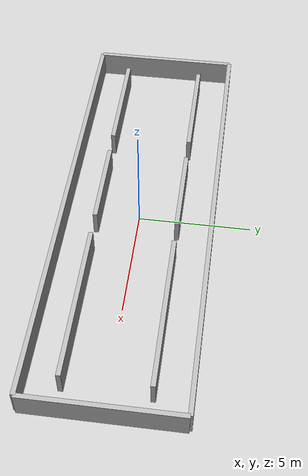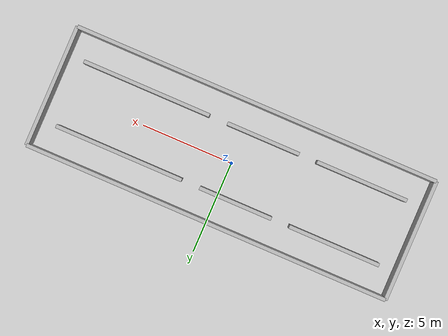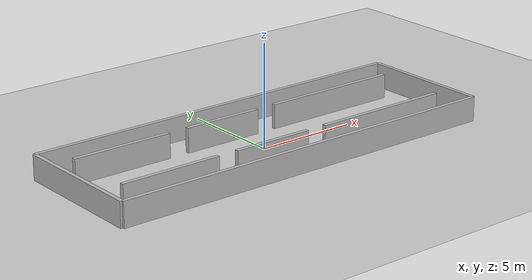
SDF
<?xml version="1.0" ?>
<sdf version="1.6">
  <world name="long_corridor">
    <physics type="ode">
      <max_step_size>0.001</max_step_size>
      <real_time_factor>1.0</real_time_factor>
      <real_time_update_rate>1000</real_time_update_rate>
    </physics>

    <include><uri>model://ground_plane</uri></include>
    <include><uri>model://sun</uri></include>

    <scene>
      <shadows>false</shadows>
    </scene>

    <!-- Outer boundary: 20m x 6.6m (короче и уже боковые коридоры) -->
    <model name="outer_north">
      <static>true</static>
      <pose>0 3.3 0.6 0 0 0</pose>
      <link name="link">
        <collision name="collision"><geometry><box><size>20 0.2 1.2</size></box></geometry></collision>
        <visual name="visual"><geometry><box><size>20 0.2 1.2</size></box></geometry></visual>
      </link>
    </model>

    <model name="outer_south">
      <static>true</static>
      <pose>0 -3.3 0.6 0 0 0</pose>
      <link name="link">
        <collision name="collision"><geometry><box><size>20 0.2 1.2</size></box></geometry></collision>
        <visual name="visual"><geometry><box><size>20 0.2 1.2</size></box></geometry></visual>
      </link>
    </model>

    <model name="outer_east">
      <static>true</static>
      <pose>10 0 0.6 0 0 0</pose>
      <link name="link">
        <collision name="collision"><geometry><box><size>0.2 6.6 1.2</size></box></geometry></collision>
        <visual name="visual"><geometry><box><size>0.2 6.6 1.2</size></box></geometry></visual>
      </link>
    </model>

    <model name="outer_west">
      <static>true</static>
      <pose>-10 0 0.6 0 0 0</pose>
      <link name="link">
        <collision name="collision"><geometry><box><size>0.2 6.6 1.2</size></box></geometry></collision>
        <visual name="visual"><geometry><box><size>0.2 6.6 1.2</size></box></geometry></visual>
      </link>
    </model>

    <!-- Corridor side walls: центральный коридор |y|<1.8, проёмы при x≈-3.5, x≈1.5 и на концах x≈±9 -->
    <!-- Левый сегмент: x от -9 до -4 (проём -10..-9 для перехода в боковые коридоры) -->
    <model name="corridor_top_left">
      <static>true</static>
      <pose>-6.5 1.8 0.6 0 0 0</pose>
      <link name="link">
        <collision name="collision"><geometry><box><size>5.0 0.2 1.2</size></box></geometry></collision>
        <visual name="visual"><geometry><box><size>5.0 0.2 1.2</size></box></geometry></visual>
      </link>
    </model>

    <model name="corridor_top_mid">
      <static>true</static>
      <pose>-1.0 1.8 0.6 0 0 0</pose>
      <link name="link">
        <collision name="collision"><geometry><box><size>4.0 0.2 1.2</size></box></geometry></collision>
        <visual name="visual"><geometry><box><size>4.0 0.2 1.2</size></box></geometry></visual>
      </link>
    </model>

    <!-- Правый сегмент: x от 2 до 9 (проём 9..10 для перехода в боковые коридоры) -->
    <model name="corridor_top_right">
      <static>true</static>
      <pose>5.5 1.8 0.6 0 0 0</pose>
      <link name="link">
        <collision name="collision"><geometry><box><size>7.0 0.2 1.2</size></box></geometry></collision>
        <visual name="visual"><geometry><box><size>7.0 0.2 1.2</size></box></geometry></visual>
      </link>
    </model>

    <model name="corridor_bottom_left">
      <static>true</static>
      <pose>-6.5 -1.8 0.6 0 0 0</pose>
      <link name="link">
        <collision name="collision"><geometry><box><size>5.0 0.2 1.2</size></box></geometry></collision>
        <visual name="visual"><geometry><box><size>5.0 0.2 1.2</size></box></geometry></visual>
      </link>
    </model>

    <model name="corridor_bottom_mid">
      <static>true</static>
      <pose>-1.0 -1.8 0.6 0 0 0</pose>
      <link name="link">
        <collision name="collision"><geometry><box><size>4.0 0.2 1.2</size></box></geometry></collision>
        <visual name="visual"><geometry><box><size>4.0 0.2 1.2</size></box></geometry></visual>
      </link>
    </model>

    <model name="corridor_bottom_right">
      <static>true</static>
      <pose>5.5 -1.8 0.6 0 0 0</pose>
      <link name="link">
        <collision name="collision"><geometry><box><size>7.0 0.2 1.2</size></box></geometry></collision>
        <visual name="visual"><geometry><box><size>7.0 0.2 1.2</size></box></geometry></visual>
      </link>
    </model>

    <!-- Боковые коридоры без коробок (коробки удалены) -->
  </world>
</sdf>
